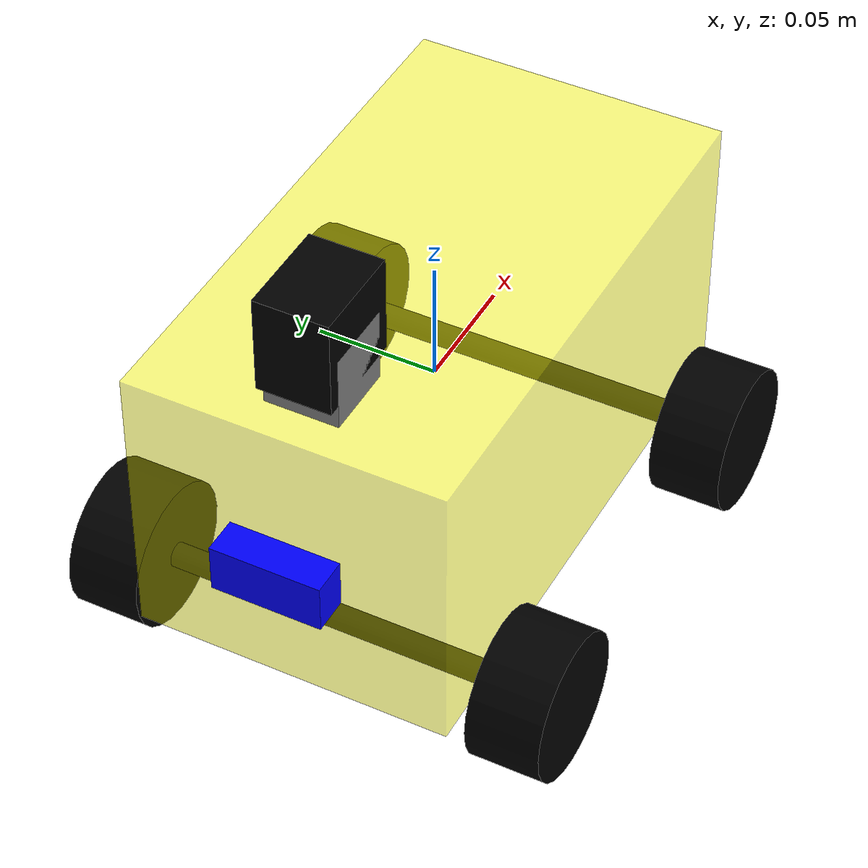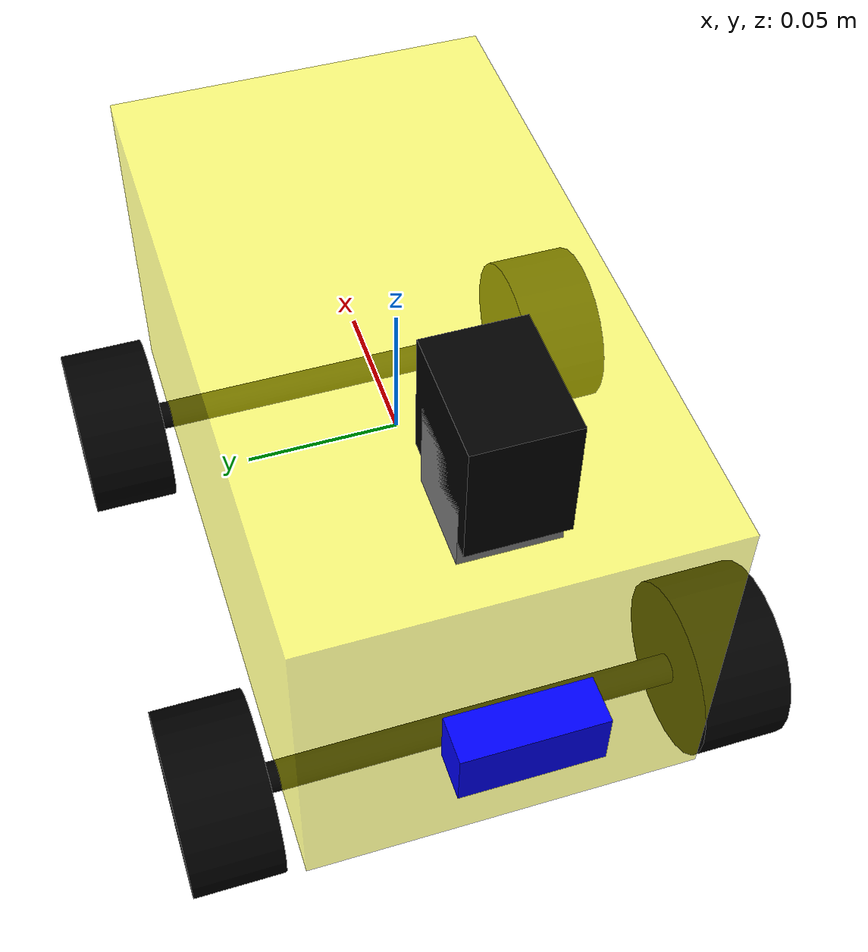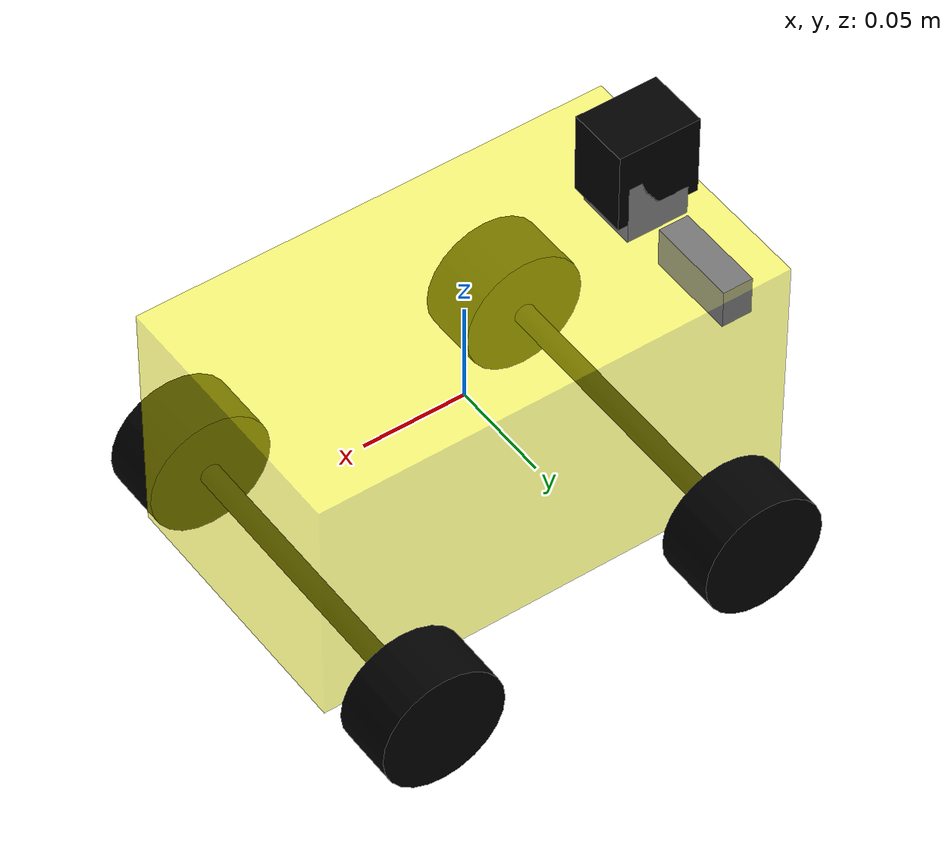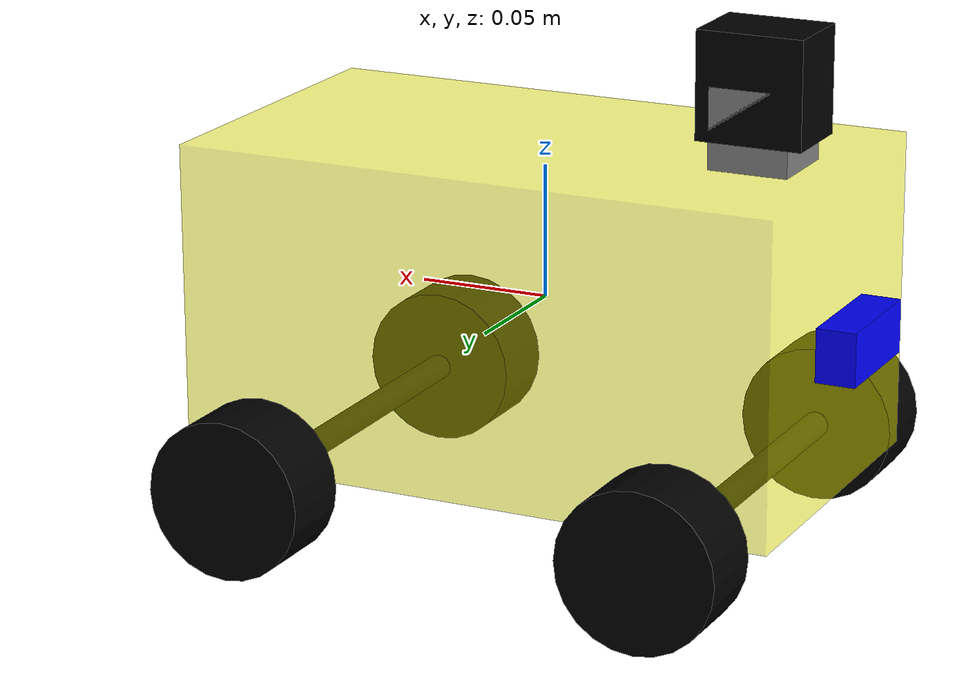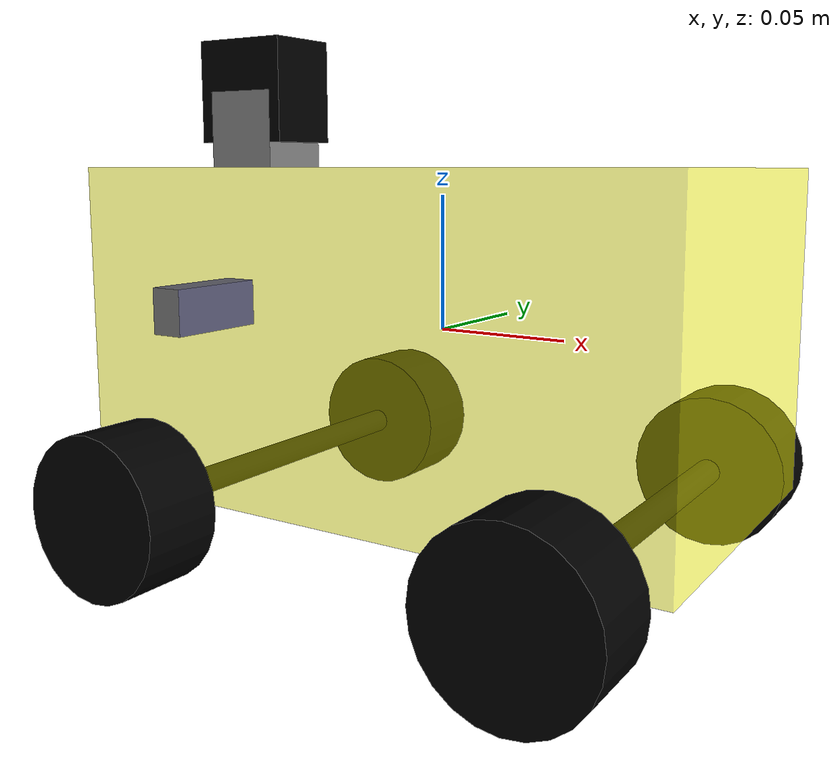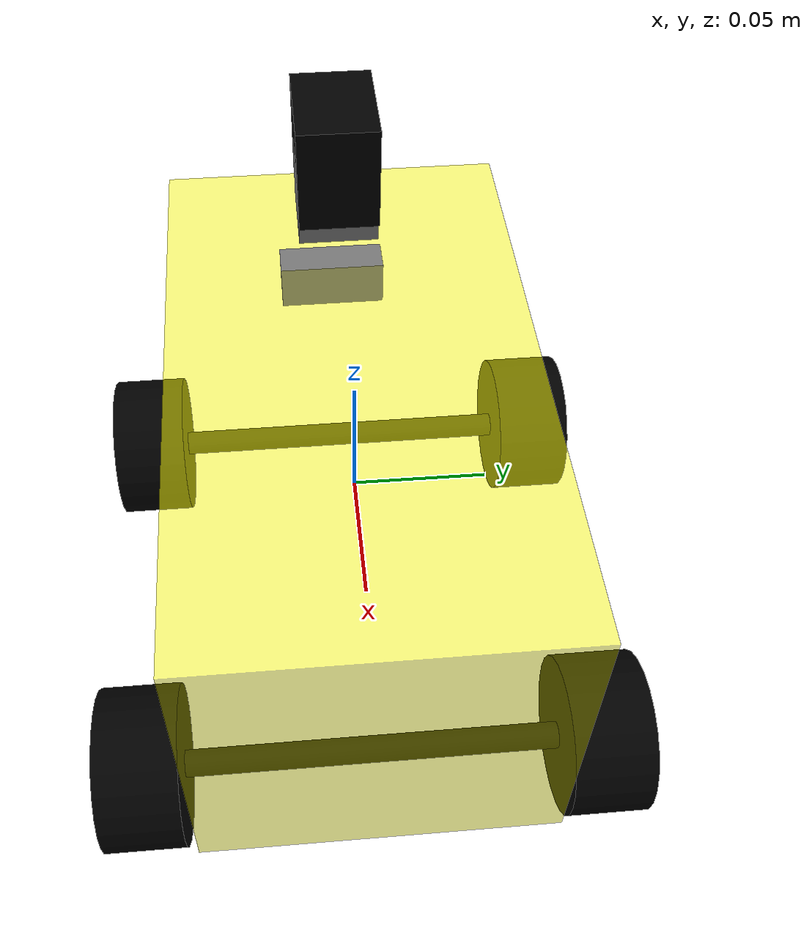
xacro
<?xml version="1.0"?>
<robot xmlns:xacro="http://www.ros.org/wiki/xacro">

    <xacro:include filename="robot_inertia.xacro" />
    <xacro:include filename="robot_rviz_colors.xacro" />

    <!-- Robot parameters - change here -->
    <!-- full robot mass approx 750g -->
    <!-- Main body -->
    <xacro:property name="body_length" value="0.23" />
    <xacro:property name="body_width" value="0.13" />
    <xacro:property name="body_height" value="0.12" />
    <xacro:property name="body_mass" value="0.65" />

    <!-- Axes -->
    <xacro:property name="axis_radius" value="0.005" />
    <xacro:property name="axis_mass" value="0.02" />

    <!-- Wheels -->
    <xacro:property name="wheel_radius" value="0.03" />
    <xacro:property name="wheel_width" value="0.03" />
    <xacro:property name="wheel_mass" value="0.03" />

    <!-- camera (relative to other dimensions) -->
    <xacro:property name="camera_size_x" value="0.04" />
    <xacro:property name="camera_size_y" value="0.03" />  <!-- half main body width -->
    <xacro:property name="camera_size_z" value="0.04" />
    <xacro:property name="camera_mass" value="0.01" />
    <xacro:property name="camera_pan_min" value="${-pi/2}" />
    <xacro:property name="camera_pan_max" value="${pi/2}" />

    <!-- Ультразвуковой датчик (спереди) -->
    <xacro:property name="us_length" value="0.015" />  <!-- depth (forward) -->
    <xacro:property name="us_width" value="0.045" />   <!-- width -->
    <xacro:property name="us_height" value="0.02" />  <!-- height -->
    <xacro:property name="us_mass" value="0.005" />
    <xacro:property name="servo_size" value="0.03" />

    <!-- Distance from center  (wheel base / 2) -->
    <xacro:property name="wheel_base_half" value="${body_length * 0.35}" />  <!-- 35% from length -->
    <xacro:property name="axis_height" value="${wheel_radius + 0.03}" />

    <!-- Base link, needed due to some limitations in rviz2 -->

    <link name="base_link"/>

    <joint name="base_to_body" type="fixed">
        <parent link="base_link"/>
        <child link="robot_body"/>
        <origin xyz="0 0 0" rpy="0 0 ${pi}"/>
    </joint>

    <!-- robot's body -->
    <link name="robot_body">
        <visual>
            <geometry>
                <box size="${body_length} ${body_width} ${body_height}"/>
            </geometry>
            <material name="yellow"/>
        </visual>
        <collision>
            <geometry>
                <box size="${body_length} ${body_width} ${body_height}"/>
            </geometry>
        </collision>
        <xacro:inertial_box mass="${body_mass}" x="${body_length}" y="${body_width}" z="${body_height}">
            <origin xyz="0 0 0" rpy="0 0 0"/>
        </xacro:inertial_box>
    </link>
    <gazebo reference="robot_body">
        <material>Gazebo/Yellow</material>
    </gazebo>

    <!-- Ultrasonic sensor (front) -->

    <link name="ultrasonic_sensor">
        <visual>
            <geometry>
                <box size="${us_length} ${us_width} ${us_height}"/>
            </geometry>
            <material name="blue"/>
        </visual>
        <collision>
            <geometry>
                <box size="${us_length} ${us_width} ${us_height}"/>
            </geometry>
        </collision>
        <xacro:inertial_box mass="${us_mass}" x="${us_length}" y="${us_width}" z="${us_height}">
            <origin xyz="0 0 0" rpy="0 0 0"/>
        </xacro:inertial_box>
    </link>

    <joint name="ultrasonic_joint" type="fixed">
        <parent link="robot_body"/>
        <child link="ultrasonic_sensor"/>
        <origin xyz="${body_length/2 + us_length/2} 0 0" rpy="0 0 0"/>
    </joint>

    <!-- Axes (front and rear) -->

    <!-- Axes -->
    <xacro:macro name="wheel_axis" params="name">
        <link name="${name}_axis">
            <visual>
                <geometry><cylinder radius="${axis_radius}" length="${body_width + wheel_width}"/></geometry>
                <material name="black"/>
            </visual>
            <collision>
                <geometry><cylinder radius="${axis_radius}" length="${body_width + wheel_width}"/></geometry>
            </collision>
            <xacro:inertial_cylinder mass="${axis_mass}" length="${body_width + wheel_width}" radius="${axis_radius}">
                <origin xyz="0 0 0" rpy="0 0 0"/>
            </xacro:inertial_cylinder>
        </link>
        <gazebo reference="${name}_axis">
            <material>Gazebo/Black</material>
        </gazebo>
    </xacro:macro>

    <!-- create axes -->
    <xacro:wheel_axis name="front"/>
    <xacro:wheel_axis name="rear"/>

    <!-- axes and body joints -->
    <joint name="axis_joint_front" type="fixed">
        <parent link="robot_body"/>
        <child link="front_axis"/>
        <origin xyz="${wheel_base_half} 0 ${-axis_height}" rpy="${pi/2} 0 0"/>
    </joint>

    <joint name="axis_joint_rear" type="fixed">
        <parent link="robot_body"/>
        <child link="rear_axis"/>
        <origin xyz="${-wheel_base_half} 0 ${-axis_height}" rpy="${pi/2} 0 0"/>
    </joint>

    <!-- Wheels (macro) -->

    <xacro:macro name="wheel" params="name parent side">
        <!-- side: 1 for right wheel, -1 for left wheel -->
        <link name="${name}_wheel">
            <visual>
                <geometry><cylinder radius="${wheel_radius}" length="${wheel_width}"/></geometry>
                <material name="black"/>
            </visual>
            <collision>
                <geometry><cylinder radius="${wheel_radius}" length="${wheel_width}"/></geometry>
            </collision>
            <xacro:inertial_cylinder mass="${wheel_mass}" length="${wheel_width}" radius="${wheel_radius}">
                <origin xyz="0 0 0" rpy="0 0 0"/>
            </xacro:inertial_cylinder>
        </link>
        <gazebo reference="${name}_wheel">
            <material>Gazebo/Black</material>
        </gazebo>

        <joint name="${name}_wheel_joint" type="continuous">
            <parent link="${parent}_axis"/>
            <child link="${name}_wheel"/>
            <origin xyz="0 0 ${side * (body_width/2 + wheel_width/2 + 0.005)}" rpy="0 0 0"/>
            <axis xyz="0 0 1"/>
        </joint>
    </xacro:macro>

    <!-- 4 wheels -->
    <xacro:wheel name="front_right" parent="front" side="1"/>
    <xacro:wheel name="front_left" parent="front" side="-1"/>
    <xacro:wheel name="rear_right" parent="rear" side="1"/>
    <xacro:wheel name="rear_left" parent="rear" side="-1"/>

    <!-- servo and camera (rotates) -->

    <!-- servo lin -->
    <link name="camera_servo">
        <visual>
            <geometry><box size="${servo_size} ${servo_size} ${servo_size}"/></geometry>
            <material name="grey"/>
        </visual>
        <collision>
            <geometry><box size="${servo_size} ${servo_size} ${servo_size}"/></geometry>
        </collision>
        <xacro:inertial_box mass="0.05" x="${servo_size}" y="${servo_size}" z="${servo_size}">
            <origin xyz="0 0 0" rpy="0 0 0"/>
        </xacro:inertial_box>
    </link>
    <gazebo reference="camera_servo">
        <material>Gazebo/Grey</material>
    </gazebo>

    <!-- servo joint -->
    <joint name="servo_mount_joint" type="fixed">
        <parent link="robot_body"/>
        <child link="camera_servo"/>
        <origin xyz="${body_length/2 - servo_size} 0 ${body_height/2 + servo_size/2}" rpy="0 0 0"/>
    </joint>

    <!-- camera -->
    <link name="camera_link">
        <visual>
            <geometry><box size="${camera_size_x} ${camera_size_y} ${camera_size_z}"/></geometry>
            <material name="black"/>
        </visual>
        <collision>
            <geometry><box size="${camera_size_x} ${camera_size_y} ${camera_size_z}"/></geometry>
        </collision>
        <xacro:inertial_box mass="${camera_mass}" x="${camera_size_x}" y="${camera_size_y}" z="${camera_size_z}">
            <origin xyz="0 0 0" rpy="0 0 0"/>
        </xacro:inertial_box>
    </link>
    <gazebo reference="camera_link">
        <material>Gazebo/Black</material>
    </gazebo>

    <!-- camera joint: turns left-right (around Z axis) -->
    <!-- 0° = forward, -90° = left, +90° = right -->
    <joint name="camera_pan_joint" type="revolute">
        <parent link="camera_servo"/>
        <child link="camera_link"/>
        <origin xyz="0 0 ${servo_size/2}" rpy="0 0 0"/>
        <axis xyz="0 0 1"/>  <!-- Turn around Z axis (left-right) -->
        <limit lower="${camera_pan_min}" upper="${camera_pan_max}" effort="2.0" velocity="5.0"/>
        <dynamics damping="0.5" friction="0.1"/>
    </joint>

    <!-- Gazebo Camera Plugin -->
    <gazebo reference="camera_link">
    <sensor type="camera" name="camera_sensor">
        <update_rate>30.0</update_rate>
        <camera name="camera">
        <visualize>true</visualize>
            <horizontal_fov>1.047</horizontal_fov>  <!-- 60 degrees -->
            <image>
                <width>640</width>
                <height>480</height>
                <format>R8G8B8</format>
            </image>
            <clip>
                <near>0.05</near>
                <far>100</far>
            </clip>
        </camera>
       <plugin name="camera_controller" filename="libgazebo_ros_camera.so">
            <ros>
                <remapping>~/image:=/camera/image_raw</remapping>
            </ros>
            <frame_name>camera_link</frame_name>
    </plugin>
    </sensor>
</gazebo>
<gazebo reference="front_left_wheel">
    <mu1>0.3</mu1>
    <mu2>0.3</mu2>
    <fdir1>1 0 0</fdir1>
</gazebo>

<gazebo reference="front_right_wheel">
    <mu1>0.3</mu1>
    <mu2>0.3</mu2>
    <fdir1>1 0 0</fdir1>
</gazebo>

<gazebo reference="rear_left_wheel">
    <mu1>0.3</mu1>
    <mu2>0.3</mu2>
    <fdir1>1 0 0</fdir1>
</gazebo>

<gazebo reference="rear_right_wheel">
    <mu1>0.3</mu1>
    <mu2>0.3</mu2>
    <fdir1>1 0 0</fdir1>
</gazebo>
<!-- ultrasonic (functional) -->
<gazebo reference="ultrasonic_sensor">
    <material>Gazebo/Blue</material>
    <sensor type="ray" name="ultrasonic">
        <always_on>true</always_on>
        <visualize>true</visualize>
        <update_rate>10</update_rate>
        <ray>
            <scan>
                <horizontal>
                    <samples>1</samples>
                    <resolution>1</resolution>
                    <min_angle>0</min_angle>
                    <max_angle>0</max_angle>
                </horizontal>
            </scan>
            <range>
                <min>0.02</min>
                <max>4.0</max>
                <resolution>0.01</resolution>
            </range>
        </ray>
        <plugin name="ultrasonic_controller" filename="libgazebo_ros_ray_sensor.so">
            <ros>
                <namespace>/</namespace>
                <remapping>~/out:=/ultrasonic</remapping>
            </ros>
            <output_type>sensor_msgs/Range</output_type>
            <frame_name>ultrasonic_sensor</frame_name>
        </plugin>
    </sensor>
</gazebo>

</robot>

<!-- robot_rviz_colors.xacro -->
<robot xmlns:xacro="http://www.ros.org/wiki/xacro">

    <!-- Color library -->
    <material name="black">
        <color rgba="0 0 0 1"/>
    </material>

    <material name="white">
        <color rgba="1 1 1 1"/>
    </material>

    <material name="red">
        <color rgba="1 0 0 1"/>
    </material>

    <material name="green">
        <color rgba="0 1 0 1"/>
    </material>

    <material name="blue">
        <color rgba="0 0 1 1"/>
    </material>

    <material name="yellow">
        <color rgba="1 1 0 0.5"/>
    </material>

    <material name="grey">
        <color rgba="0.5 0.5 0.5 1"/>
    </material>

</robot>
